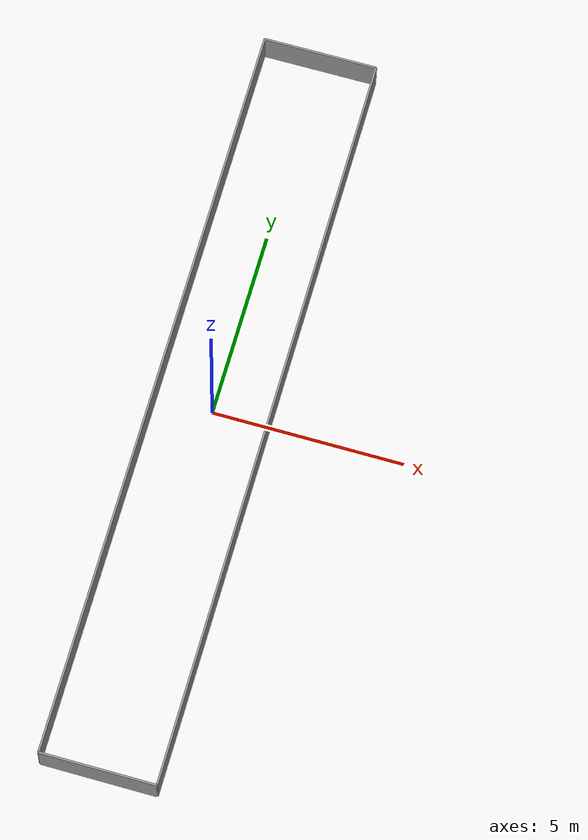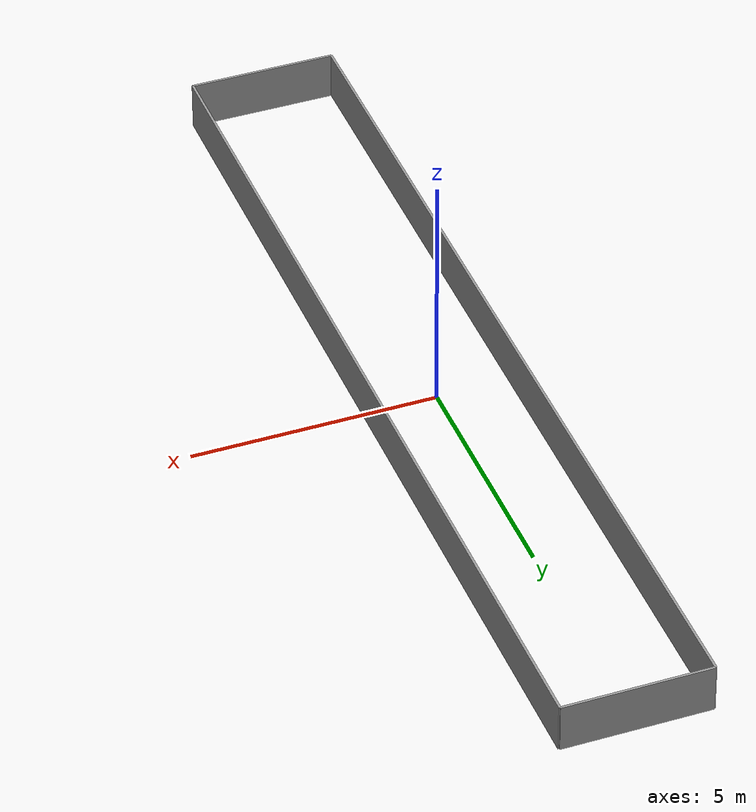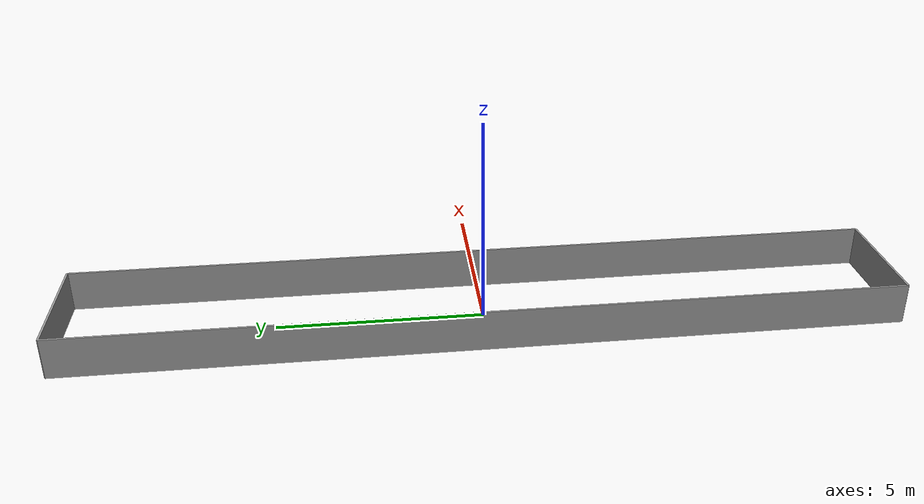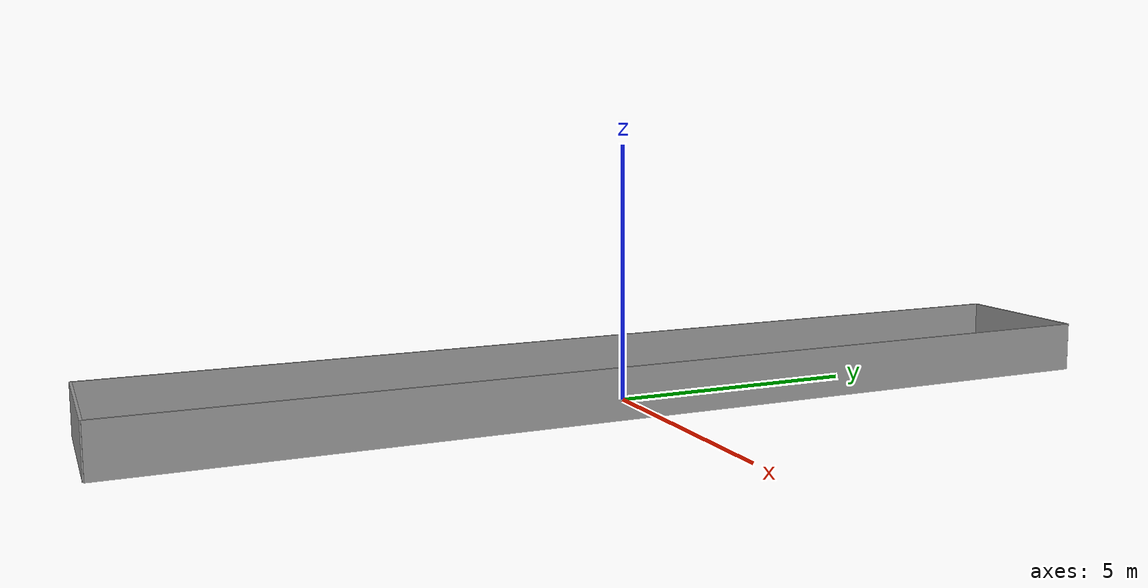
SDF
<?xml version='1.0'?>
<sdf version='1.5'>
  <model name='project_wall'>
    <pose frame=''>0 0 0 0 0 0</pose>
    <link name='Wall_1'>
      <collision name='Wall_1_Collision'>
        <geometry>
          <box>
            <size>3 0.05 1</size>
          </box>
        </geometry>
        <pose frame=''>0 0 0.5 0 0 0</pose>
        <surface>
          <friction>
            <ode>
              <mu>0</mu>
              <mu2>0</mu2>
              <slip1>0</slip1>
              <slip2>0</slip2>
            </ode>
          </friction>
        </surface>
      </collision>
      <visual name='Wall_1_Visual'>
        <pose frame=''>0 0 0.5 0 0 0</pose>
        <geometry>
          <box>
            <size>3 0.05 1</size>
          </box>
        </geometry>
        <material>
          <script>
            <uri>file://media/materials/scripts/gazebo.material</uri>
            <name>Gazebo/Grey</name>
          </script>
          <ambient>1 1 1 1</ambient>
        </material>
      </visual>
      <pose frame=''>0 10 0 0 0 0</pose>
    </link>
    <link name='Wall_2'>
      <collision name='Wall_2_Collision'>
        <geometry>
          <box>
            <size>3 0.05 1</size>
          </box>
        </geometry>
        <pose frame=''>0 0 0.5 0 0 0</pose>
        <surface>
          <friction>
            <ode>
              <mu>0</mu>
              <mu2>0</mu2>
              <slip1>0</slip1>
              <slip2>0</slip2>
            </ode>
          </friction>
        </surface>
      </collision>
      <visual name='Wall_2_Visual'>
        <pose frame=''>0 0 0.5 0 0 0</pose>
        <geometry>
          <box>
            <size>3 0.05 1</size>
          </box>
        </geometry>
        <material>
          <script>
            <uri>file://media/materials/scripts/gazebo.material</uri>
            <name>Gazebo/Grey</name>
          </script>
          <ambient>1 1 1 1</ambient>
        </material>
      </visual>
      <pose frame=''>0 -10 0 0 0 0</pose>
    </link>
    <link name='Wall_3'>
      <collision name='Wall_3_Collision'>
        <geometry>
          <box>
            <size>20 0.05 1</size>
          </box>
        </geometry>
        <pose frame=''>0 0 0.5 0 0 0</pose>
        <surface>
          <friction>
            <ode>
              <mu>0</mu>
              <mu2>0</mu2>
              <slip1>0</slip1>
              <slip2>0</slip2>
            </ode>
          </friction>
        </surface>
      </collision>
      <visual name='Wall_3_Visual'>
        <pose frame=''>0 0 0.5 0 0 0</pose>
        <geometry>
          <box>
            <size>20 0.05 1</size>
          </box>
        </geometry>
        <material>
          <script>
            <uri>file://media/materials/scripts/gazebo.material</uri>
            <name>Gazebo/Grey</name>
          </script>
          <ambient>1 1 1 1</ambient>
        </material>
      </visual>
      <pose frame=''>1.5 0 0 0 0 1.5708</pose>
    </link>
    <link name='Wall_4'>
      <collision name='Wall_4_Collision'>
        <geometry>
          <box>
            <size>20 0.05 1</size>
          </box>
        </geometry>
        <pose frame=''>0 0 0.5 0 0 0</pose>
        <surface>
          <friction>
            <ode>
              <mu>0</mu>
              <mu2>0</mu2>
              <slip1>0</slip1>
              <slip2>0</slip2>
            </ode>
          </friction>
        </surface>
      </collision>
      <visual name='Wall_4_Visual'>
        <pose frame=''>0 0 0.5 0 0 0</pose>
        <geometry>
          <box>
            <size>20 0.05 1</size>
          </box>
        </geometry>
        <material>
          <script>
            <uri>file://media/materials/scripts/gazebo.material</uri>
            <name>Gazebo/Grey</name>
          </script>
          <ambient>1 1 1 1</ambient>
        </material>
      </visual>
      <pose frame=''>-1.5 0 0 0 0 1.5708</pose>
    </link>
    <static>1</static>
  </model>
</sdf>
